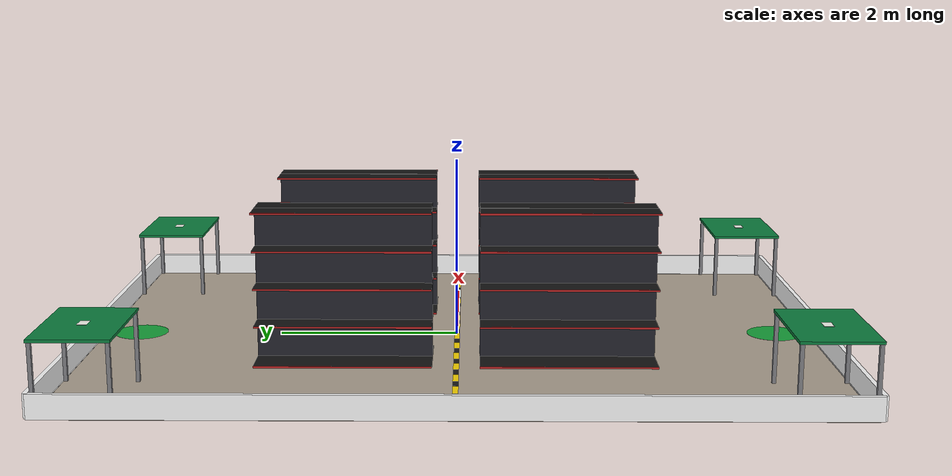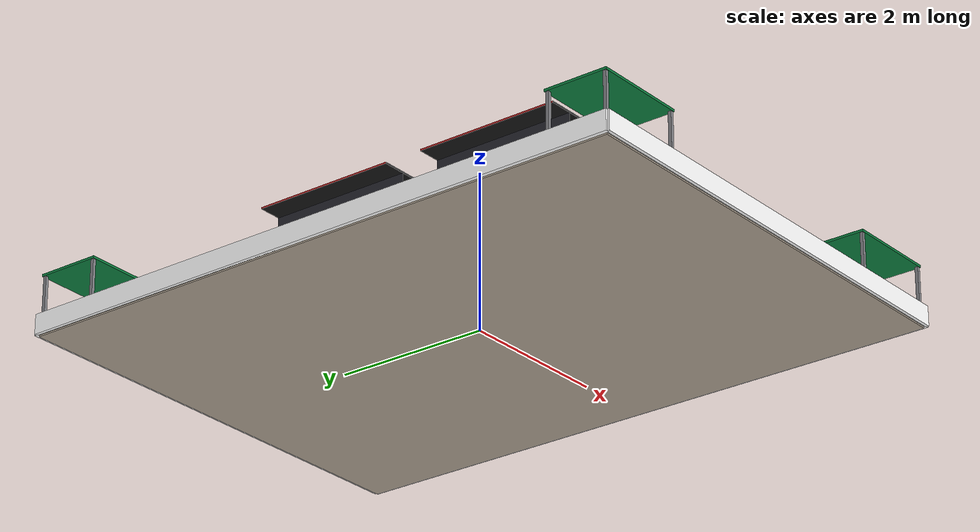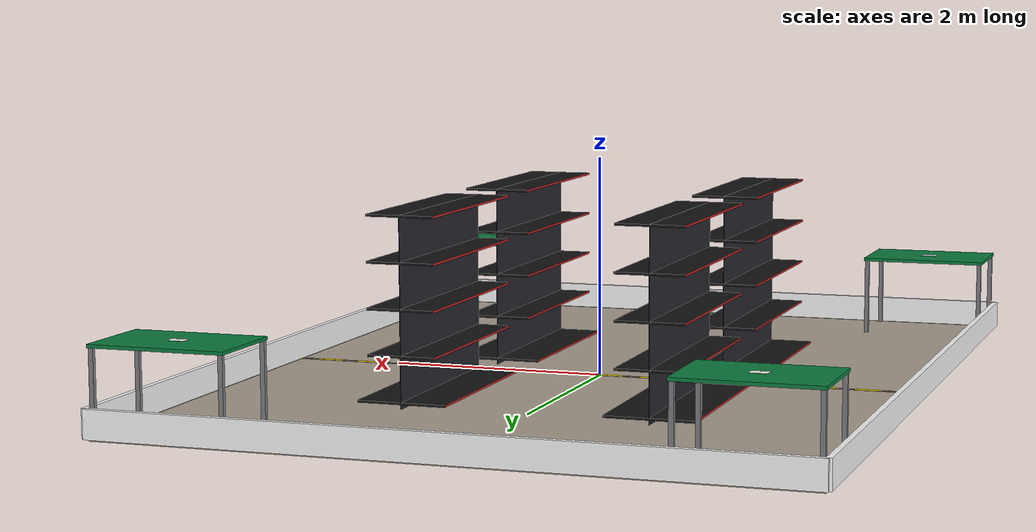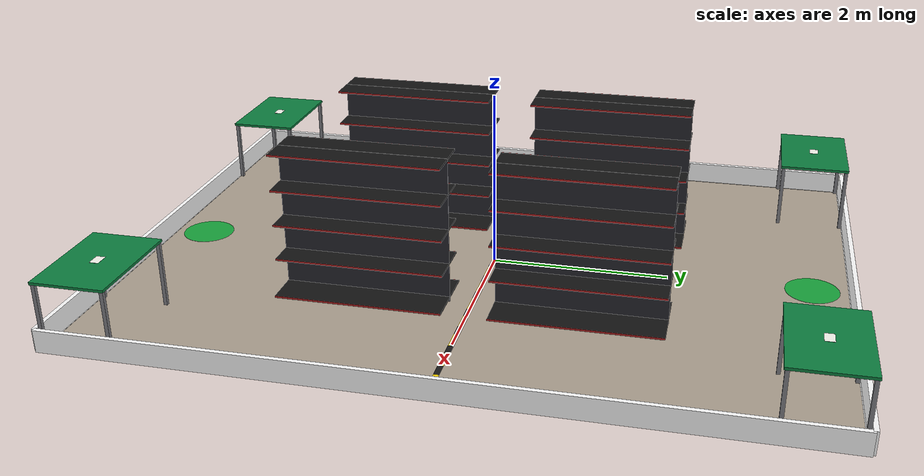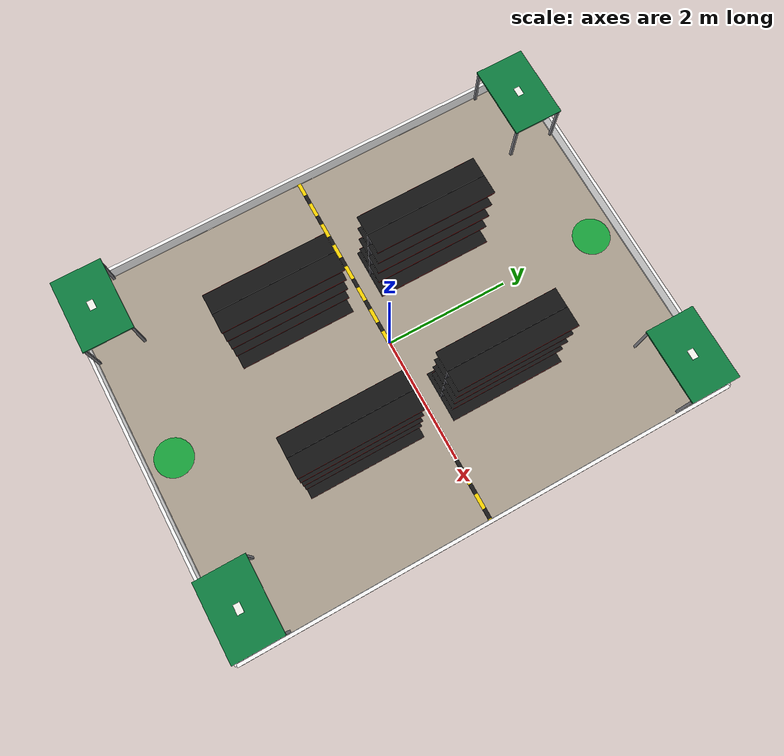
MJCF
<?xml version="1.0" encoding="utf-8"?>
<mujoco model="supermarket_scene_from_db">
  <compiler angle="degree" coordinate="local" inertiafromgeom="true" meshdir="." texturedir="."/>
  <option timestep="0.005" gravity="0 0 -9.81" iterations="50" ls_iterations="50"/>
  <default>
    <geom condim="3" friction="0.5 0.1 0.1"/>
  </default>
  <visual>
    <global azimuth="120" elevation="-30" offwidth="1920" offheight="1080"/>
  </visual>
  <asset>
    <texture name="floor_tex" type="2d" builtin="checker" width="256" height="256" rgb1="0.85 0.82 0.78" rgb2="0.75 0.72 0.68"/>
    <material name="floor_mat" rgba="0.85 0.82 0.78 1.0" reflectance="0.05" texture="floor_tex" texrepeat="12 16"/>
    <material name="shelf_mat" rgba="0.15 0.15 0.18 1.0" reflectance="0.3"/>
    <material name="shelf_layer_mat" rgba="0.75 0.15 0.15 1.0" reflectance="0.3"/>
    <material name="frame_mat" rgba="0.25 0.25 0.30 1.0" reflectance="0.4"/>
    <material name="counter_mat" rgba="0.50 0.50 0.52 1.0" reflectance="0.15"/>
    <material name="counter_top_mat" rgba="0.05 0.50 0.25 1.0" reflectance="0.15"/>
    <material name="basket_mat" rgba="0.15 0.25 0.55 1.0" reflectance="0.1"/>
    <material name="receipt_mat" rgba="0.98 0.98 0.95 1.0" reflectance="0.05"/>
    <material name="boundary_mat" rgba="0.9 0.9 0.9 1.0" reflectance="0.1"/>
    <material name="divider_mat" rgba="1.0 0.85 0.0 1.0" reflectance="0.1"/>
    <material name="start_zone_mat" rgba="0.0 0.7 0.2 0.8" reflectance="0.05"/>
    <material name="wall_mat" rgba="1.0 1.0 1.0 1.0" reflectance="0.2"/>
    <material name="shelf_side_red" rgba="0.75 0.15 0.15 1.0" reflectance="0.3"/>
    <material name="shelf_side_black" rgba="0.08 0.08 0.08 1.0" reflectance="0.3"/>
    <texture name="tex_cracker_box" type="2d" file="assets/ycb/asset/ycb_models/003_cracker_box/google_16k/texture_map.png"/>
    <material name="mat_cracker_box" texture="tex_cracker_box" specular="0.3" shininess="0.3"/>
    <mesh name="mesh_cracker_box" file="assets/ycb/asset/ycb_models/003_cracker_box/google_16k/textured.obj"/>
    <texture name="tex_sugar_box" type="2d" file="assets/ycb/asset/ycb_models/004_sugar_box/google_16k/texture_map.png"/>
    <material name="mat_sugar_box" texture="tex_sugar_box" specular="0.3" shininess="0.3"/>
    <mesh name="mesh_sugar_box" file="assets/ycb/asset/ycb_models/004_sugar_box/google_16k/textured.obj"/>
    <texture name="tex_tomato_soup_can" type="2d" file="assets/ycb/asset/ycb_models/005_tomato_soup_can/google_16k/texture_map.png"/>
    <material name="mat_tomato_soup_can" texture="tex_tomato_soup_can" specular="0.3" shininess="0.3"/>
    <mesh name="mesh_tomato_soup_can" file="assets/ycb/asset/ycb_models/005_tomato_soup_can/google_16k/textured.obj"/>
    <texture name="tex_mustard_bottle" type="2d" file="assets/ycb/asset/ycb_models/006_mustard_bottle/google_16k/texture_map.png"/>
    <material name="mat_mustard_bottle" texture="tex_mustard_bottle" specular="0.3" shininess="0.3"/>
    <mesh name="mesh_mustard_bottle" file="assets/ycb/asset/ycb_models/006_mustard_bottle/google_16k/textured.obj"/>
    <texture name="tex_tuna_fish_can" type="2d" file="assets/ycb/asset/ycb_models/007_tuna_fish_can/google_16k/texture_map.png"/>
    <material name="mat_tuna_fish_can" texture="tex_tuna_fish_can" specular="0.3" shininess="0.3"/>
    <mesh name="mesh_tuna_fish_can" file="assets/ycb/asset/ycb_models/007_tuna_fish_can/google_16k/textured.obj"/>
    <texture name="tex_potted_meat_can" type="2d" file="assets/ycb/asset/ycb_models/010_potted_meat_can/google_16k/texture_map.png"/>
    <material name="mat_potted_meat_can" texture="tex_potted_meat_can" specular="0.3" shininess="0.3"/>
    <mesh name="mesh_potted_meat_can" file="assets/ycb/asset/ycb_models/010_potted_meat_can/google_16k/textured.obj"/>
    <texture name="tex_banana" type="2d" file="assets/ycb/asset/ycb_models/011_banana/google_16k/texture_map.png"/>
    <material name="mat_banana" texture="tex_banana" specular="0.3" shininess="0.3"/>
    <mesh name="mesh_banana" file="assets/ycb/asset/ycb_models/011_banana/google_16k/textured.obj"/>
    <texture name="tex_pitcher_base" type="2d" file="assets/ycb/asset/ycb_models/019_pitcher_base/google_16k/texture_map.png"/>
    <material name="mat_pitcher_base" texture="tex_pitcher_base" specular="0.3" shininess="0.3"/>
    <mesh name="mesh_pitcher_base" file="assets/ycb/asset/ycb_models/019_pitcher_base/google_16k/textured.obj"/>
    <texture name="tex_bleach_cleanser" type="2d" file="assets/ycb/asset/ycb_models/021_bleach_cleanser/google_16k/texture_map.png"/>
    <material name="mat_bleach_cleanser" texture="tex_bleach_cleanser" specular="0.3" shininess="0.3"/>
    <mesh name="mesh_bleach_cleanser" file="assets/ycb/asset/ycb_models/021_bleach_cleanser/google_16k/textured.obj"/>
    <texture name="tex_mug" type="2d" file="assets/ycb/asset/ycb_models/025_mug/google_16k/texture_map.png"/>
    <material name="mat_mug" texture="tex_mug" specular="0.3" shininess="0.3"/>
    <mesh name="mesh_mug" file="assets/ycb/asset/ycb_models/025_mug/google_16k/textured.obj"/>
    <texture name="tex_large_marker" type="2d" file="assets/ycb/asset/ycb_models/040_large_marker/google_16k/texture_map.png"/>
    <material name="mat_large_marker" texture="tex_large_marker" specular="0.3" shininess="0.3"/>
    <mesh name="mesh_large_marker" file="assets/ycb/asset/ycb_models/040_large_marker/google_16k/textured.obj"/>
    <texture name="tex_coffee_mug" type="2d" file="assets/scanned/models/ACE_Coffee_Mug_Kristen_16_oz_cup/texture.png"/>
    <material name="mat_coffee_mug" texture="tex_coffee_mug" specular="0.5" shininess="0.5"/>
    <mesh name="mesh_coffee_mug" file="assets/scanned/models/ACE_Coffee_Mug_Kristen_16_oz_cup/model.obj"/>
    <texture name="tex_fruit_snacks_grape" type="2d" file="assets/scanned/models/Black_Forest_Fruit_Snacks_28_Pack_Grape/texture.png"/>
    <material name="mat_fruit_snacks_grape" texture="tex_fruit_snacks_grape" specular="0.5" shininess="0.5"/>
    <mesh name="mesh_fruit_snacks_grape" file="assets/scanned/models/Black_Forest_Fruit_Snacks_28_Pack_Grape/model.obj"/>
    <texture name="tex_brisk_tea" type="2d" file="assets/scanned/models/Brisk_Iced_Tea_Lemon_12_12_fl_oz_355_ml_cans_144_fl_oz_426_lt/texture.png"/>
    <material name="mat_brisk_tea" texture="tex_brisk_tea" specular="0.5" shininess="0.5"/>
    <mesh name="mesh_brisk_tea" file="assets/scanned/models/Brisk_Iced_Tea_Lemon_12_12_fl_oz_355_ml_cans_144_fl_oz_426_lt/model.obj"/>
    <texture name="tex_milk_frother" type="2d" file="assets/scanned/models/Aroma_Stainless_Steel_Milk_Frother_2_Cup/texture.png"/>
    <material name="mat_milk_frother" texture="tex_milk_frother" specular="0.5" shininess="0.5"/>
    <mesh name="mesh_milk_frother" file="assets/scanned/models/Aroma_Stainless_Steel_Milk_Frother_2_Cup/model.obj"/>
    <texture name="tex_porcelain_bowl" type="2d" file="assets/scanned/models/BIA_Porcelain_Ramekin_With_Glazed_Rim_35_45_oz_cup/texture.png"/>
    <material name="mat_porcelain_bowl" texture="tex_porcelain_bowl" specular="0.5" shininess="0.5"/>
    <mesh name="mesh_porcelain_bowl" file="assets/scanned/models/BIA_Porcelain_Ramekin_With_Glazed_Rim_35_45_oz_cup/model.obj"/>
    <texture name="tex_plastic_bowl" type="2d" file="assets/scanned/models/Bradshaw_International_11642_7_Qt_MP_Plastic_Bowl/texture.png"/>
    <material name="mat_plastic_bowl" texture="tex_plastic_bowl" specular="0.5" shininess="0.5"/>
    <mesh name="mesh_plastic_bowl" file="assets/scanned/models/Bradshaw_International_11642_7_Qt_MP_Plastic_Bowl/model.obj"/>
    <texture name="tex_elderberry_syrup" type="2d" file="assets/scanned/models/Black_Elderberry_Syrup_54_oz_Gaia_Herbs/texture.png"/>
    <material name="mat_elderberry_syrup" texture="tex_elderberry_syrup" specular="0.5" shininess="0.5"/>
    <mesh name="mesh_elderberry_syrup" file="assets/scanned/models/Black_Elderberry_Syrup_54_oz_Gaia_Herbs/model.obj"/>
    <texture name="tex_fruit_snacks_juicy" type="2d" file="assets/scanned/models/Black_Forest_Fruit_Snacks_Juicy_Filled_Centers_10_pouches_9_oz_total/texture.png"/>
    <material name="mat_fruit_snacks_juicy" texture="tex_fruit_snacks_juicy" specular="0.5" shininess="0.5"/>
    <mesh name="mesh_fruit_snacks_juicy" file="assets/scanned/models/Black_Forest_Fruit_Snacks_Juicy_Filled_Centers_10_pouches_9_oz_total/model.obj"/>
  </asset>
  <worldbody>
    <light name="light_center" pos="0 0 3" directional="true" castshadow="false" diffuse="0.5 0.5 0.5"/>
    <light name="light_nw" pos="-2 3 3" directional="true" castshadow="false" diffuse="0.4 0.4 0.4"/>
    <light name="light_ne" pos="2 3 3" directional="true" castshadow="false" diffuse="0.4 0.4 0.4"/>
    <light name="light_sw" pos="-2 -3 3" directional="true" castshadow="false" diffuse="0.4 0.4 0.4"/>
    <light name="light_se" pos="2 -3 3" directional="true" castshadow="false" diffuse="0.4 0.4 0.4"/>
    <light name="light_n" pos="0 3 3" directional="true" castshadow="false" diffuse="0.4 0.4 0.4"/>
    <light name="light_s" pos="0 -3 3" directional="true" castshadow="false" diffuse="0.4 0.4 0.4"/>
    <light name="light_w" pos="-3 0 3" directional="true" castshadow="false" diffuse="0.4 0.4 0.4"/>
    <light name="light_e" pos="3 0 3" directional="true" castshadow="false" diffuse="0.4 0.4 0.4"/>
    <body name="floor" pos="0.0000 0.0000 -0.0100">
      <geom name="floor_geom" pos="0.0000 0.0000 0.0000" type="box" size="3.0000 4.0000 0.0100" material="floor_mat"/>
    </body>
    <body name="divider_line" pos="0.0000 0.0000 0.0010">
      <geom name="divider_geom" pos="0.0000 0.0000 0.0000" type="box" size="3.0000 0.0300 0.0010" material="divider_mat"/>
    </body>
    <body name="divider_black_1" pos="-2.7000 0.0000 0.0020">
      <geom name="divider_black_1_geom" pos="0.0000 0.0000 0.0000" type="box" size="0.0800 0.0300 0.0010" rgba="0.1 0.1 0.1 1.0"/>
    </body>
    <body name="divider_black_3" pos="-2.3000 0.0000 0.0020">
      <geom name="divider_black_3_geom" pos="0.0000 0.0000 0.0000" type="box" size="0.0800 0.0300 0.0010" rgba="0.1 0.1 0.1 1.0"/>
    </body>
    <body name="divider_black_5" pos="-1.9000 0.0000 0.0020">
      <geom name="divider_black_5_geom" pos="0.0000 0.0000 0.0000" type="box" size="0.0800 0.0300 0.0010" rgba="0.1 0.1 0.1 1.0"/>
    </body>
    <body name="divider_black_7" pos="-1.5000 0.0000 0.0020">
      <geom name="divider_black_7_geom" pos="0.0000 0.0000 0.0000" type="box" size="0.0800 0.0300 0.0010" rgba="0.1 0.1 0.1 1.0"/>
    </body>
    <body name="divider_black_9" pos="-1.1000 0.0000 0.0020">
      <geom name="divider_black_9_geom" pos="0.0000 0.0000 0.0000" type="box" size="0.0800 0.0300 0.0010" rgba="0.1 0.1 0.1 1.0"/>
    </body>
    <body name="divider_black_11" pos="-0.7000 0.0000 0.0020">
      <geom name="divider_black_11_geom" pos="0.0000 0.0000 0.0000" type="box" size="0.0800 0.0300 0.0010" rgba="0.1 0.1 0.1 1.0"/>
    </body>
    <body name="divider_black_13" pos="-0.3000 0.0000 0.0020">
      <geom name="divider_black_13_geom" pos="0.0000 0.0000 0.0000" type="box" size="0.0800 0.0300 0.0010" rgba="0.1 0.1 0.1 1.0"/>
    </body>
    <body name="divider_black_15" pos="0.1000 0.0000 0.0020">
      <geom name="divider_black_15_geom" pos="0.0000 0.0000 0.0000" type="box" size="0.0800 0.0300 0.0010" rgba="0.1 0.1 0.1 1.0"/>
    </body>
    <body name="divider_black_17" pos="0.5000 0.0000 0.0020">
      <geom name="divider_black_17_geom" pos="0.0000 0.0000 0.0000" type="box" size="0.0800 0.0300 0.0010" rgba="0.1 0.1 0.1 1.0"/>
    </body>
    <body name="divider_black_19" pos="0.9000 0.0000 0.0020">
      <geom name="divider_black_19_geom" pos="0.0000 0.0000 0.0000" type="box" size="0.0800 0.0300 0.0010" rgba="0.1 0.1 0.1 1.0"/>
    </body>
    <body name="divider_black_21" pos="1.3000 0.0000 0.0020">
      <geom name="divider_black_21_geom" pos="0.0000 0.0000 0.0000" type="box" size="0.0800 0.0300 0.0010" rgba="0.1 0.1 0.1 1.0"/>
    </body>
    <body name="divider_black_23" pos="1.7000 0.0000 0.0020">
      <geom name="divider_black_23_geom" pos="0.0000 0.0000 0.0000" type="box" size="0.0800 0.0300 0.0010" rgba="0.1 0.1 0.1 1.0"/>
    </body>
    <body name="divider_black_25" pos="2.1000 0.0000 0.0020">
      <geom name="divider_black_25_geom" pos="0.0000 0.0000 0.0000" type="box" size="0.0800 0.0300 0.0010" rgba="0.1 0.1 0.1 1.0"/>
    </body>
    <body name="divider_black_27" pos="2.5000 0.0000 0.0020">
      <geom name="divider_black_27_geom" pos="0.0000 0.0000 0.0000" type="box" size="0.0800 0.0300 0.0010" rgba="0.1 0.1 0.1 1.0"/>
    </body>
    <body name="divider_black_29" pos="2.9000 0.0000 0.0020">
      <geom name="divider_black_29_geom" pos="0.0000 0.0000 0.0000" type="box" size="0.0800 0.0300 0.0010" rgba="0.1 0.1 0.1 1.0"/>
    </body>
    <body name="start_zone_top" pos="0.0000 3.6000 0.0100">
      <geom name="start_zone_top_geom" pos="0.0000 0.0000 0.0000" type="cylinder" size="0.3 0.002" material="start_zone_mat"/>
      <site name="start_zone_top_site" pos="0.0000 0.0000 0.0500" size="0.05" rgba="0 0 0 0" type="sphere"/>
    </body>
    <body name="start_zone_bottom" pos="0.0000 -3.6000 0.0100">
      <geom name="start_zone_bottom_geom" pos="0.0000 0.0000 0.0000" type="cylinder" size="0.3 0.002" material="start_zone_mat"/>
      <site name="start_zone_bottom_site" pos="0.0000 0.0000 0.0500" size="0.05" rgba="0 0 0 0" type="sphere"/>
    </body>
    <body name="boundary_top" pos="0.0000 4.0000 0.0010">
      <geom name="boundary_top_geom" pos="0.0000 0.0000 0.0000" type="box" size="3.0000 0.0100 0.0010" material="boundary_mat"/>
    </body>
    <body name="boundary_bottom" pos="0.0000 -4.0000 0.0010">
      <geom name="boundary_bottom_geom" pos="0.0000 0.0000 0.0000" type="box" size="3.0000 0.0100 0.0010" material="boundary_mat"/>
    </body>
    <body name="boundary_left" pos="-3.0000 0.0000 0.0010">
      <geom name="boundary_left_geom" pos="0.0000 0.0000 0.0000" type="box" size="0.0100 4.0000 0.0010" material="boundary_mat"/>
    </body>
    <body name="boundary_right" pos="3.0000 0.0000 0.0010">
      <geom name="boundary_right_geom" pos="0.0000 0.0000 0.0000" type="box" size="0.0100 4.0000 0.0010" material="boundary_mat"/>
    </body>
    <body name="wall_top" pos="0.0000 4.0250 0.1250">
      <geom name="wall_top_geom" pos="0.0000 0.0000 0.0000" type="box" size="3.0250 0.0250 0.1250" material="wall_mat"/>
    </body>
    <body name="wall_bottom" pos="0.0000 -4.0250 0.1250">
      <geom name="wall_bottom_geom" pos="0.0000 0.0000 0.0000" type="box" size="3.0250 0.0250 0.1250" material="wall_mat"/>
    </body>
    <body name="wall_left" pos="-3.0250 0.0000 0.1250">
      <geom name="wall_left_geom" pos="0.0000 0.0000 0.0000" type="box" size="0.0250 4.0250 0.1250" material="wall_mat"/>
    </body>
    <body name="wall_right" pos="3.0250 0.0000 0.1250">
      <geom name="wall_right_geom" pos="0.0000 0.0000 0.0000" type="box" size="0.0250 4.0250 0.1250" material="wall_mat"/>
    </body>
    <body name="shelf_group_1" pos="-1.1000 1.1800 0.0000">
      <body name="shelf_group_1_back_panel" pos="0.0000 0.0000 0.8250">
        <geom name="shelf_group_1_back_geom" pos="0.0000 0.0000 0.0000" type="box" size="0.0025 0.9300 0.8250" material="shelf_mat"/>
      </body>
      <body name="shelf_group_1_shelf_level_0" pos="0.0000 0.0000 0.0500">
        <geom name="shelf_group_1_shelf_L0_neg_body" pos="-0.2025 0.0000 0.0000" type="box" size="0.2000 0.9300 0.0100" material="shelf_side_black"/>
        <geom name="shelf_group_1_shelf_L0_neg_face" pos="-0.4015 0.0000 0.0000" type="box" size="0.0020 0.9300 0.0100" material="shelf_side_red"/>
        <geom name="shelf_group_1_shelf_L0_pos_body" pos="0.2025 0.0000 0.0000" type="box" size="0.2000 0.9300 0.0100" material="shelf_side_black"/>
        <geom name="shelf_group_1_shelf_L0_pos_face" pos="0.4015 0.0000 0.0000" type="box" size="0.0020 0.9300 0.0100" material="shelf_side_red"/>
      </body>
      <site name="shelf_group_1_L0_face_neg" pos="-0.4525 0.0000 0.0500" size="0.03" rgba="0 0 0 0" type="sphere"/>
      <site name="shelf_group_1_L0_face_pos" pos="0.4525 0.0000 0.0500" size="0.03" rgba="0 0 0 0" type="sphere"/>
      <body name="shelf_group_1_shelf_level_1" pos="0.0000 0.0000 0.4500">
        <geom name="shelf_group_1_shelf_L1_neg_body" pos="-0.1525 0.0000 0.0000" type="box" size="0.1500 0.9300 0.0100" material="shelf_side_black"/>
        <geom name="shelf_group_1_shelf_L1_neg_face" pos="-0.3015 0.0000 0.0000" type="box" size="0.0020 0.9300 0.0100" material="shelf_side_red"/>
        <geom name="shelf_group_1_shelf_L1_pos_body" pos="0.1525 0.0000 0.0000" type="box" size="0.1500 0.9300 0.0100" material="shelf_side_black"/>
        <geom name="shelf_group_1_shelf_L1_pos_face" pos="0.3015 0.0000 0.0000" type="box" size="0.0020 0.9300 0.0100" material="shelf_side_red"/>
      </body>
      <site name="shelf_group_1_L1_face_neg" pos="-0.3525 0.0000 0.4500" size="0.03" rgba="0 0 0 0" type="sphere"/>
      <site name="shelf_group_1_L1_face_pos" pos="0.3525 0.0000 0.4500" size="0.03" rgba="0 0 0 0" type="sphere"/>
      <body name="shelf_group_1_shelf_level_2" pos="0.0000 0.0000 0.8500">
        <geom name="shelf_group_1_shelf_L2_neg_body" pos="-0.1525 0.0000 0.0000" type="box" size="0.1500 0.9300 0.0100" material="shelf_side_black"/>
        <geom name="shelf_group_1_shelf_L2_neg_face" pos="-0.3015 0.0000 0.0000" type="box" size="0.0020 0.9300 0.0100" material="shelf_side_red"/>
        <geom name="shelf_group_1_shelf_L2_pos_body" pos="0.1525 0.0000 0.0000" type="box" size="0.1500 0.9300 0.0100" material="shelf_side_black"/>
        <geom name="shelf_group_1_shelf_L2_pos_face" pos="0.3015 0.0000 0.0000" type="box" size="0.0020 0.9300 0.0100" material="shelf_side_red"/>
      </body>
      <site name="shelf_group_1_L2_face_neg" pos="-0.3525 0.0000 0.8500" size="0.03" rgba="0 0 0 0" type="sphere"/>
      <site name="shelf_group_1_L2_face_pos" pos="0.3525 0.0000 0.8500" size="0.03" rgba="0 0 0 0" type="sphere"/>
      <body name="shelf_group_1_shelf_level_3" pos="0.0000 0.0000 1.2500">
        <geom name="shelf_group_1_shelf_L3_neg_body" pos="-0.1525 0.0000 0.0000" type="box" size="0.1500 0.9300 0.0100" material="shelf_side_black"/>
        <geom name="shelf_group_1_shelf_L3_neg_face" pos="-0.3015 0.0000 0.0000" type="box" size="0.0020 0.9300 0.0100" material="shelf_side_red"/>
        <geom name="shelf_group_1_shelf_L3_pos_body" pos="0.1525 0.0000 0.0000" type="box" size="0.1500 0.9300 0.0100" material="shelf_side_black"/>
        <geom name="shelf_group_1_shelf_L3_pos_face" pos="0.3015 0.0000 0.0000" type="box" size="0.0020 0.9300 0.0100" material="shelf_side_red"/>
      </body>
      <site name="shelf_group_1_L3_face_neg" pos="-0.3525 0.0000 1.2500" size="0.03" rgba="0 0 0 0" type="sphere"/>
      <site name="shelf_group_1_L3_face_pos" pos="0.3525 0.0000 1.2500" size="0.03" rgba="0 0 0 0" type="sphere"/>
      <body name="shelf_group_1_shelf_level_4" pos="0.0000 0.0000 1.6500">
        <geom name="shelf_group_1_shelf_L4_neg_body" pos="-0.1525 0.0000 0.0000" type="box" size="0.1500 0.9300 0.0100" material="shelf_side_black"/>
        <geom name="shelf_group_1_shelf_L4_neg_face" pos="-0.3015 0.0000 0.0000" type="box" size="0.0020 0.9300 0.0100" material="shelf_side_red"/>
        <geom name="shelf_group_1_shelf_L4_pos_body" pos="0.1525 0.0000 0.0000" type="box" size="0.1500 0.9300 0.0100" material="shelf_side_black"/>
        <geom name="shelf_group_1_shelf_L4_pos_face" pos="0.3015 0.0000 0.0000" type="box" size="0.0020 0.9300 0.0100" material="shelf_side_red"/>
      </body>
      <site name="shelf_group_1_L4_face_neg" pos="-0.3525 0.0000 1.6500" size="0.03" rgba="0 0 0 0" type="sphere"/>
      <site name="shelf_group_1_L4_face_pos" pos="0.3525 0.0000 1.6500" size="0.03" rgba="0 0 0 0" type="sphere"/>
    </body>
    <body name="shelf_group_2" pos="1.1000 1.1800 0.0000">
      <body name="shelf_group_2_back_panel" pos="0.0000 0.0000 0.8250">
        <geom name="shelf_group_2_back_geom" pos="0.0000 0.0000 0.0000" type="box" size="0.0025 0.9300 0.8250" material="shelf_mat"/>
      </body>
      <body name="shelf_group_2_shelf_level_0" pos="0.0000 0.0000 0.0500">
        <geom name="shelf_group_2_shelf_L0_neg_body" pos="-0.2025 0.0000 0.0000" type="box" size="0.2000 0.9300 0.0100" material="shelf_side_black"/>
        <geom name="shelf_group_2_shelf_L0_neg_face" pos="-0.4015 0.0000 0.0000" type="box" size="0.0020 0.9300 0.0100" material="shelf_side_red"/>
        <geom name="shelf_group_2_shelf_L0_pos_body" pos="0.2025 0.0000 0.0000" type="box" size="0.2000 0.9300 0.0100" material="shelf_side_black"/>
        <geom name="shelf_group_2_shelf_L0_pos_face" pos="0.4015 0.0000 0.0000" type="box" size="0.0020 0.9300 0.0100" material="shelf_side_red"/>
      </body>
      <site name="shelf_group_2_L0_face_neg" pos="-0.4525 0.0000 0.0500" size="0.03" rgba="0 0 0 0" type="sphere"/>
      <site name="shelf_group_2_L0_face_pos" pos="0.4525 0.0000 0.0500" size="0.03" rgba="0 0 0 0" type="sphere"/>
      <body name="shelf_group_2_shelf_level_1" pos="0.0000 0.0000 0.4500">
        <geom name="shelf_group_2_shelf_L1_neg_body" pos="-0.1525 0.0000 0.0000" type="box" size="0.1500 0.9300 0.0100" material="shelf_side_black"/>
        <geom name="shelf_group_2_shelf_L1_neg_face" pos="-0.3015 0.0000 0.0000" type="box" size="0.0020 0.9300 0.0100" material="shelf_side_red"/>
        <geom name="shelf_group_2_shelf_L1_pos_body" pos="0.1525 0.0000 0.0000" type="box" size="0.1500 0.9300 0.0100" material="shelf_side_black"/>
        <geom name="shelf_group_2_shelf_L1_pos_face" pos="0.3015 0.0000 0.0000" type="box" size="0.0020 0.9300 0.0100" material="shelf_side_red"/>
      </body>
      <site name="shelf_group_2_L1_face_neg" pos="-0.3525 0.0000 0.4500" size="0.03" rgba="0 0 0 0" type="sphere"/>
      <site name="shelf_group_2_L1_face_pos" pos="0.3525 0.0000 0.4500" size="0.03" rgba="0 0 0 0" type="sphere"/>
      <body name="shelf_group_2_shelf_level_2" pos="0.0000 0.0000 0.8500">
        <geom name="shelf_group_2_shelf_L2_neg_body" pos="-0.1525 0.0000 0.0000" type="box" size="0.1500 0.9300 0.0100" material="shelf_side_black"/>
        <geom name="shelf_group_2_shelf_L2_neg_face" pos="-0.3015 0.0000 0.0000" type="box" size="0.0020 0.9300 0.0100" material="shelf_side_red"/>
        <geom name="shelf_group_2_shelf_L2_pos_body" pos="0.1525 0.0000 0.0000" type="box" size="0.1500 0.9300 0.0100" material="shelf_side_black"/>
        <geom name="shelf_group_2_shelf_L2_pos_face" pos="0.3015 0.0000 0.0000" type="box" size="0.0020 0.9300 0.0100" material="shelf_side_red"/>
      </body>
      <site name="shelf_group_2_L2_face_neg" pos="-0.3525 0.0000 0.8500" size="0.03" rgba="0 0 0 0" type="sphere"/>
      <site name="shelf_group_2_L2_face_pos" pos="0.3525 0.0000 0.8500" size="0.03" rgba="0 0 0 0" type="sphere"/>
      <body name="shelf_group_2_shelf_level_3" pos="0.0000 0.0000 1.2500">
        <geom name="shelf_group_2_shelf_L3_neg_body" pos="-0.1525 0.0000 0.0000" type="box" size="0.1500 0.9300 0.0100" material="shelf_side_black"/>
        <geom name="shelf_group_2_shelf_L3_neg_face" pos="-0.3015 0.0000 0.0000" type="box" size="0.0020 0.9300 0.0100" material="shelf_side_red"/>
        <geom name="shelf_group_2_shelf_L3_pos_body" pos="0.1525 0.0000 0.0000" type="box" size="0.1500 0.9300 0.0100" material="shelf_side_black"/>
        <geom name="shelf_group_2_shelf_L3_pos_face" pos="0.3015 0.0000 0.0000" type="box" size="0.0020 0.9300 0.0100" material="shelf_side_red"/>
      </body>
      <site name="shelf_group_2_L3_face_neg" pos="-0.3525 0.0000 1.2500" size="0.03" rgba="0 0 0 0" type="sphere"/>
      <site name="shelf_group_2_L3_face_pos" pos="0.3525 0.0000 1.2500" size="0.03" rgba="0 0 0 0" type="sphere"/>
      <body name="shelf_group_2_shelf_level_4" pos="0.0000 0.0000 1.6500">
        <geom name="shelf_group_2_shelf_L4_neg_body" pos="-0.1525 0.0000 0.0000" type="box" size="0.1500 0.9300 0.0100" material="shelf_side_black"/>
        <geom name="shelf_group_2_shelf_L4_neg_face" pos="-0.3015 0.0000 0.0000" type="box" size="0.0020 0.9300 0.0100" material="shelf_side_red"/>
        <geom name="shelf_group_2_shelf_L4_pos_body" pos="0.1525 0.0000 0.0000" type="box" size="0.1500 0.9300 0.0100" material="shelf_side_black"/>
        <geom name="shelf_group_2_shelf_L4_pos_face" pos="0.3015 0.0000 0.0000" type="box" size="0.0020 0.9300 0.0100" material="shelf_side_red"/>
      </body>
      <site name="shelf_group_2_L4_face_neg" pos="-0.3525 0.0000 1.6500" size="0.03" rgba="0 0 0 0" type="sphere"/>
      <site name="shelf_group_2_L4_face_pos" pos="0.3525 0.0000 1.6500" size="0.03" rgba="0 0 0 0" type="sphere"/>
    </body>
    <body name="shelf_group_3" pos="-1.1000 -1.1800 0.0000">
      <body name="shelf_group_3_back_panel" pos="0.0000 0.0000 0.8250">
        <geom name="shelf_group_3_back_geom" pos="0.0000 0.0000 0.0000" type="box" size="0.0025 0.9300 0.8250" material="shelf_mat"/>
      </body>
      <body name="shelf_group_3_shelf_level_0" pos="0.0000 0.0000 0.0500">
        <geom name="shelf_group_3_shelf_L0_neg_body" pos="-0.2025 0.0000 0.0000" type="box" size="0.2000 0.9300 0.0100" material="shelf_side_black"/>
        <geom name="shelf_group_3_shelf_L0_neg_face" pos="-0.4015 0.0000 0.0000" type="box" size="0.0020 0.9300 0.0100" material="shelf_side_red"/>
        <geom name="shelf_group_3_shelf_L0_pos_body" pos="0.2025 0.0000 0.0000" type="box" size="0.2000 0.9300 0.0100" material="shelf_side_black"/>
        <geom name="shelf_group_3_shelf_L0_pos_face" pos="0.4015 0.0000 0.0000" type="box" size="0.0020 0.9300 0.0100" material="shelf_side_red"/>
      </body>
      <site name="shelf_group_3_L0_face_neg" pos="-0.4525 0.0000 0.0500" size="0.03" rgba="0 0 0 0" type="sphere"/>
      <site name="shelf_group_3_L0_face_pos" pos="0.4525 0.0000 0.0500" size="0.03" rgba="0 0 0 0" type="sphere"/>
      <body name="shelf_group_3_shelf_level_1" pos="0.0000 0.0000 0.4500">
        <geom name="shelf_group_3_shelf_L1_neg_body" pos="-0.1525 0.0000 0.0000" type="box" size="0.1500 0.9300 0.0100" material="shelf_side_black"/>
        <geom name="shelf_group_3_shelf_L1_neg_face" pos="-0.3015 0.0000 0.0000" type="box" size="0.0020 0.9300 0.0100" material="shelf_side_red"/>
        <geom name="shelf_group_3_shelf_L1_pos_body" pos="0.1525 0.0000 0.0000" type="box" size="0.1500 0.9300 0.0100" material="shelf_side_black"/>
        <geom name="shelf_group_3_shelf_L1_pos_face" pos="0.3015 0.0000 0.0000" type="box" size="0.0020 0.9300 0.0100" material="shelf_side_red"/>
      </body>
      <site name="shelf_group_3_L1_face_neg" pos="-0.3525 0.0000 0.4500" size="0.03" rgba="0 0 0 0" type="sphere"/>
      <site name="shelf_group_3_L1_face_pos" pos="0.3525 0.0000 0.4500" size="0.03" rgba="0 0 0 0" type="sphere"/>
      <body name="shelf_group_3_shelf_level_2" pos="0.0000 0.0000 0.8500">
        <geom name="shelf_group_3_shelf_L2_neg_body" pos="-0.1525 0.0000 0.0000" type="box" size="0.1500 0.9300 0.0100" material="shelf_side_black"/>
        <geom name="shelf_group_3_shelf_L2_neg_face" pos="-0.3015 0.0000 0.0000" type="box" size="0.0020 0.9300 0.0100" material="shelf_side_red"/>
        <geom name="shelf_group_3_shelf_L2_pos_body" pos="0.1525 0.0000 0.0000" type="box" size="0.1500 0.9300 0.0100" material="shelf_side_black"/>
        <geom name="shelf_group_3_shelf_L2_pos_face" pos="0.3015 0.0000 0.0000" type="box" size="0.0020 0.9300 0.0100" material="shelf_side_red"/>
      </body>
      <site name="shelf_group_3_L2_face_neg" pos="-0.3525 0.0000 0.8500" size="0.03" rgba="0 0 0 0" type="sphere"/>
      <site name="shelf_group_3_L2_face_pos" pos="0.3525 0.0000 0.8500" size="0.03" rgba="0 0 0 0" type="sphere"/>
      <body name="shelf_group_3_shelf_level_3" pos="0.0000 0.0000 1.2500">
        <geom name="shelf_group_3_shelf_L3_neg_body" pos="-0.1525 0.0000 0.0000" type="box" size="0.1500 0.9300 0.0100" material="shelf_side_black"/>
        <geom name="shelf_group_3_shelf_L3_neg_face" pos="-0.3015 0.0000 0.0000" type="box" size="0.0020 0.9300 0.0100" material="shelf_side_red"/>
        <geom name="shelf_group_3_shelf_L3_pos_body" pos="0.1525 0.0000 0.0000" type="box" size="0.1500 0.9300 0.0100" material="shelf_side_black"/>
        <geom name="shelf_group_3_shelf_L3_pos_face" pos="0.3015 0.0000 0.0000" type="box" size="0.0020 0.9300 0.0100" material="shelf_side_red"/>
      </body>
      <site name="shelf_group_3_L3_face_neg" pos="-0.3525 0.0000 1.2500" size="0.03" rgba="0 0 0 0" type="sphere"/>
      <site name="shelf_group_3_L3_face_pos" pos="0.3525 0.0000 1.2500" size="0.03" rgba="0 0 0 0" type="sphere"/>
      <body name="shelf_group_3_shelf_level_4" pos="0.0000 0.0000 1.6500">
        <geom name="shelf_group_3_shelf_L4_neg_body" pos="-0.1525 0.0000 0.0000" type="box" size="0.1500 0.9300 0.0100" material="shelf_side_black"/>
        <geom name="shelf_group_3_shelf_L4_neg_face" pos="-0.3015 0.0000 0.0000" type="box" size="0.0020 0.9300 0.0100" material="shelf_side_red"/>
        <geom name="shelf_group_3_shelf_L4_pos_body" pos="0.1525 0.0000 0.0000" type="box" size="0.1500 0.9300 0.0100" material="shelf_side_black"/>
        <geom name="shelf_group_3_shelf_L4_pos_face" pos="0.3015 0.0000 0.0000" type="box" size="0.0020 0.9300 0.0100" material="shelf_side_red"/>
      </body>
      <site name="shelf_group_3_L4_face_neg" pos="-0.3525 0.0000 1.6500" size="0.03" rgba="0 0 0 0" type="sphere"/>
      <site name="shelf_group_3_L4_face_pos" pos="0.3525 0.0000 1.6500" size="0.03" rgba="0 0 0 0" type="sphere"/>
    </body>
    <body name="shelf_group_4" pos="1.1000 -1.1800 0.0000">
      <body name="shelf_group_4_back_panel" pos="0.0000 0.0000 0.8250">
        <geom name="shelf_group_4_back_geom" pos="0.0000 0.0000 0.0000" type="box" size="0.0025 0.9300 0.8250" material="shelf_mat"/>
      </body>
      <body name="shelf_group_4_shelf_level_0" pos="0.0000 0.0000 0.0500">
        <geom name="shelf_group_4_shelf_L0_neg_body" pos="-0.2025 0.0000 0.0000" type="box" size="0.2000 0.9300 0.0100" material="shelf_side_black"/>
        <geom name="shelf_group_4_shelf_L0_neg_face" pos="-0.4015 0.0000 0.0000" type="box" size="0.0020 0.9300 0.0100" material="shelf_side_red"/>
        <geom name="shelf_group_4_shelf_L0_pos_body" pos="0.2025 0.0000 0.0000" type="box" size="0.2000 0.9300 0.0100" material="shelf_side_black"/>
        <geom name="shelf_group_4_shelf_L0_pos_face" pos="0.4015 0.0000 0.0000" type="box" size="0.0020 0.9300 0.0100" material="shelf_side_red"/>
      </body>
      <site name="shelf_group_4_L0_face_neg" pos="-0.4525 0.0000 0.0500" size="0.03" rgba="0 0 0 0" type="sphere"/>
      <site name="shelf_group_4_L0_face_pos" pos="0.4525 0.0000 0.0500" size="0.03" rgba="0 0 0 0" type="sphere"/>
      <body name="shelf_group_4_shelf_level_1" pos="0.0000 0.0000 0.4500">
        <geom name="shelf_group_4_shelf_L1_neg_body" pos="-0.1525 0.0000 0.0000" type="box" size="0.1500 0.9300 0.0100" material="shelf_side_black"/>
        <geom name="shelf_group_4_shelf_L1_neg_face" pos="-0.3015 0.0000 0.0000" type="box" size="0.0020 0.9300 0.0100" material="shelf_side_red"/>
        <geom name="shelf_group_4_shelf_L1_pos_body" pos="0.1525 0.0000 0.0000" type="box" size="0.1500 0.9300 0.0100" material="shelf_side_black"/>
        <geom name="shelf_group_4_shelf_L1_pos_face" pos="0.3015 0.0000 0.0000" type="box" size="0.0020 0.9300 0.0100" material="shelf_side_red"/>
      </body>
      <site name="shelf_group_4_L1_face_neg" pos="-0.3525 0.0000 0.4500" size="0.03" rgba="0 0 0 0" type="sphere"/>
      <site name="shelf_group_4_L1_face_pos" pos="0.3525 0.0000 0.4500" size="0.03" rgba="0 0 0 0" type="sphere"/>
      <body name="shelf_group_4_shelf_level_2" pos="0.0000 0.0000 0.8500">
        <geom name="shelf_group_4_shelf_L2_neg_body" pos="-0.1525 0.0000 0.0000" type="box" size="0.1500 0.9300 0.0100" material="shelf_side_black"/>
        <geom name="shelf_group_4_shelf_L2_neg_face" pos="-0.3015 0.0000 0.0000" type="box" size="0.0020 0.9300 0.0100" material="shelf_side_red"/>
        <geom name="shelf_group_4_shelf_L2_pos_body" pos="0.1525 0.0000 0.0000" type="box" size="0.1500 0.9300 0.0100" material="shelf_side_black"/>
        <geom name="shelf_group_4_shelf_L2_pos_face" pos="0.3015 0.0000 0.0000" type="box" size="0.0020 0.9300 0.0100" material="shelf_side_red"/>
      </body>
      <site name="shelf_group_4_L2_face_neg" pos="-0.3525 0.0000 0.8500" size="0.03" rgba="0 0 0 0" type="sphere"/>
      <site name="shelf_group_4_L2_face_pos" pos="0.3525 0.0000 0.8500" size="0.03" rgba="0 0 0 0" type="sphere"/>
      <body name="shelf_group_4_shelf_level_3" pos="0.0000 0.0000 1.2500">
        <geom name="shelf_group_4_shelf_L3_neg_body" pos="-0.1525 0.0000 0.0000" type="box" size="0.1500 0.9300 0.0100" material="shelf_side_black"/>
        <geom name="shelf_group_4_shelf_L3_neg_face" pos="-0.3015 0.0000 0.0000" type="box" size="0.0020 0.9300 0.0100" material="shelf_side_red"/>
        <geom name="shelf_group_4_shelf_L3_pos_body" pos="0.1525 0.0000 0.0000" type="box" size="0.1500 0.9300 0.0100" material="shelf_side_black"/>
        <geom name="shelf_group_4_shelf_L3_pos_face" pos="0.3015 0.0000 0.0000" type="box" size="0.0020 0.9300 0.0100" material="shelf_side_red"/>
      </body>
      <site name="shelf_group_4_L3_face_neg" pos="-0.3525 0.0000 1.2500" size="0.03" rgba="0 0 0 0" type="sphere"/>
      <site name="shelf_group_4_L3_face_pos" pos="0.3525 0.0000 1.2500" size="0.03" rgba="0 0 0 0" type="sphere"/>
      <body name="shelf_group_4_shelf_level_4" pos="0.0000 0.0000 1.6500">
        <geom name="shelf_group_4_shelf_L4_neg_body" pos="-0.1525 0.0000 0.0000" type="box" size="0.1500 0.9300 0.0100" material="shelf_side_black"/>
        <geom name="shelf_group_4_shelf_L4_neg_face" pos="-0.3015 0.0000 0.0000" type="box" size="0.0020 0.9300 0.0100" material="shelf_side_red"/>
        <geom name="shelf_group_4_shelf_L4_pos_body" pos="0.1525 0.0000 0.0000" type="box" size="0.1500 0.9300 0.0100" material="shelf_side_black"/>
        <geom name="shelf_group_4_shelf_L4_pos_face" pos="0.3015 0.0000 0.0000" type="box" size="0.0020 0.9300 0.0100" material="shelf_side_red"/>
      </body>
      <site name="shelf_group_4_L4_face_neg" pos="-0.3525 0.0000 1.6500" size="0.03" rgba="0 0 0 0" type="sphere"/>
      <site name="shelf_group_4_L4_face_pos" pos="0.3525 0.0000 1.6500" size="0.03" rgba="0 0 0 0" type="sphere"/>
    </body>
    <body name="delivery_table_1" pos="-3.0000 3.2000 0.0000" euler="0 0 0.0000">
      <body name="delivery_table_1_body" pos="0.6000 0.4000 0.3750">
        <geom name="delivery_table_1_top" pos="0.0000 0.0000 0.3750" type="box" size="0.6000 0.4000 0.0150" material="counter_top_mat"/>
        <body name="delivery_table_1_leg_0" pos="-0.5700 -0.3700 0.0000">
          <geom name="delivery_table_1_leg_0_geom" pos="0.0000 0.0000 0.0000" type="box" size="0.0200 0.0200 0.3750" material="counter_mat"/>
        </body>
        <body name="delivery_table_1_leg_1" pos="-0.5700 0.3700 0.0000">
          <geom name="delivery_table_1_leg_1_geom" pos="0.0000 0.0000 0.0000" type="box" size="0.0200 0.0200 0.3750" material="counter_mat"/>
        </body>
        <body name="delivery_table_1_leg_2" pos="0.5700 -0.3700 0.0000">
          <geom name="delivery_table_1_leg_2_geom" pos="0.0000 0.0000 0.0000" type="box" size="0.0200 0.0200 0.3750" material="counter_mat"/>
        </body>
        <body name="delivery_table_1_leg_3" pos="0.5700 0.3700 0.0000">
          <geom name="delivery_table_1_leg_3_geom" pos="0.0000 0.0000 0.0000" type="box" size="0.0200 0.0200 0.3750" material="counter_mat"/>
        </body>
      </body>
      <body name="receipt_delivery_table_1" pos="0.6000 0.4000 0.7670">
        <geom name="receipt_delivery_table_1_geom" pos="0.0000 0.0000 0.0000" type="box" size="0.0750 0.0500 0.0010" material="receipt_mat"/>
      </body>
    </body>
    <body name="delivery_table_2" pos="1.8000 3.2000 0.0000" euler="0 0 0.0000">
      <body name="delivery_table_2_body" pos="0.6000 0.4000 0.3750">
        <geom name="delivery_table_2_top" pos="0.0000 0.0000 0.3750" type="box" size="0.6000 0.4000 0.0150" material="counter_top_mat"/>
        <body name="delivery_table_2_leg_0" pos="-0.5700 -0.3700 0.0000">
          <geom name="delivery_table_2_leg_0_geom" pos="0.0000 0.0000 0.0000" type="box" size="0.0200 0.0200 0.3750" material="counter_mat"/>
        </body>
        <body name="delivery_table_2_leg_1" pos="-0.5700 0.3700 0.0000">
          <geom name="delivery_table_2_leg_1_geom" pos="0.0000 0.0000 0.0000" type="box" size="0.0200 0.0200 0.3750" material="counter_mat"/>
        </body>
        <body name="delivery_table_2_leg_2" pos="0.5700 -0.3700 0.0000">
          <geom name="delivery_table_2_leg_2_geom" pos="0.0000 0.0000 0.0000" type="box" size="0.0200 0.0200 0.3750" material="counter_mat"/>
        </body>
        <body name="delivery_table_2_leg_3" pos="0.5700 0.3700 0.0000">
          <geom name="delivery_table_2_leg_3_geom" pos="0.0000 0.0000 0.0000" type="box" size="0.0200 0.0200 0.3750" material="counter_mat"/>
        </body>
      </body>
      <body name="receipt_delivery_table_2" pos="0.6000 0.4000 0.7670">
        <geom name="receipt_delivery_table_2_geom" pos="0.0000 0.0000 0.0000" type="box" size="0.0750 0.0500 0.0010" material="receipt_mat"/>
      </body>
    </body>
    <body name="delivery_table_3" pos="-3.0000 -4.0000 0.0000" euler="0 0 0.0000">
      <body name="delivery_table_3_body" pos="0.6000 0.4000 0.3750">
        <geom name="delivery_table_3_top" pos="0.0000 0.0000 0.3750" type="box" size="0.6000 0.4000 0.0150" material="counter_top_mat"/>
        <body name="delivery_table_3_leg_0" pos="-0.5700 -0.3700 0.0000">
          <geom name="delivery_table_3_leg_0_geom" pos="0.0000 0.0000 0.0000" type="box" size="0.0200 0.0200 0.3750" material="counter_mat"/>
        </body>
        <body name="delivery_table_3_leg_1" pos="-0.5700 0.3700 0.0000">
          <geom name="delivery_table_3_leg_1_geom" pos="0.0000 0.0000 0.0000" type="box" size="0.0200 0.0200 0.3750" material="counter_mat"/>
        </body>
        <body name="delivery_table_3_leg_2" pos="0.5700 -0.3700 0.0000">
          <geom name="delivery_table_3_leg_2_geom" pos="0.0000 0.0000 0.0000" type="box" size="0.0200 0.0200 0.3750" material="counter_mat"/>
        </body>
        <body name="delivery_table_3_leg_3" pos="0.5700 0.3700 0.0000">
          <geom name="delivery_table_3_leg_3_geom" pos="0.0000 0.0000 0.0000" type="box" size="0.0200 0.0200 0.3750" material="counter_mat"/>
        </body>
      </body>
      <body name="receipt_delivery_table_3" pos="0.6000 0.4000 0.7670">
        <geom name="receipt_delivery_table_3_geom" pos="0.0000 0.0000 0.0000" type="box" size="0.0750 0.0500 0.0010" material="receipt_mat"/>
      </body>
    </body>
    <body name="delivery_table_4" pos="1.8000 -4.0000 0.0000" euler="0 0 0.0000">
      <body name="delivery_table_4_body" pos="0.6000 0.4000 0.3750">
        <geom name="delivery_table_4_top" pos="0.0000 0.0000 0.3750" type="box" size="0.6000 0.4000 0.0150" material="counter_top_mat"/>
        <body name="delivery_table_4_leg_0" pos="-0.5700 -0.3700 0.0000">
          <geom name="delivery_table_4_leg_0_geom" pos="0.0000 0.0000 0.0000" type="box" size="0.0200 0.0200 0.3750" material="counter_mat"/>
        </body>
        <body name="delivery_table_4_leg_1" pos="-0.5700 0.3700 0.0000">
          <geom name="delivery_table_4_leg_1_geom" pos="0.0000 0.0000 0.0000" type="box" size="0.0200 0.0200 0.3750" material="counter_mat"/>
        </body>
        <body name="delivery_table_4_leg_2" pos="0.5700 -0.3700 0.0000">
          <geom name="delivery_table_4_leg_2_geom" pos="0.0000 0.0000 0.0000" type="box" size="0.0200 0.0200 0.3750" material="counter_mat"/>
        </body>
        <body name="delivery_table_4_leg_3" pos="0.5700 0.3700 0.0000">
          <geom name="delivery_table_4_leg_3_geom" pos="0.0000 0.0000 0.0000" type="box" size="0.0200 0.0200 0.3750" material="counter_mat"/>
        </body>
      </body>
      <body name="receipt_delivery_table_4" pos="0.6000 0.4000 0.7670">
        <geom name="receipt_delivery_table_4_geom" pos="0.0000 0.0000 0.0000" type="box" size="0.0750 0.0500 0.0010" material="receipt_mat"/>
      </body>
    </body>
    <camera name="top_view" pos="0 0 6" quat="0.7071 0.7071 0 0" fovy="60"/>
    <camera name="aisle_view" pos="0 0 1.5" quat="0.5 0.5 0.5 0.5" fovy="75"/>
    <camera name="shelf_close" pos="1.5 2 1.2" xyaxes="-0.8 0 0 0 0 0.8" fovy="60"/>
    <camera name="overview_angle" pos="3 3 3" xyaxes="-0.5 0.5 0 -0.25 -0.25 0.5" fovy="60"/>
  </worldbody>
</mujoco>
